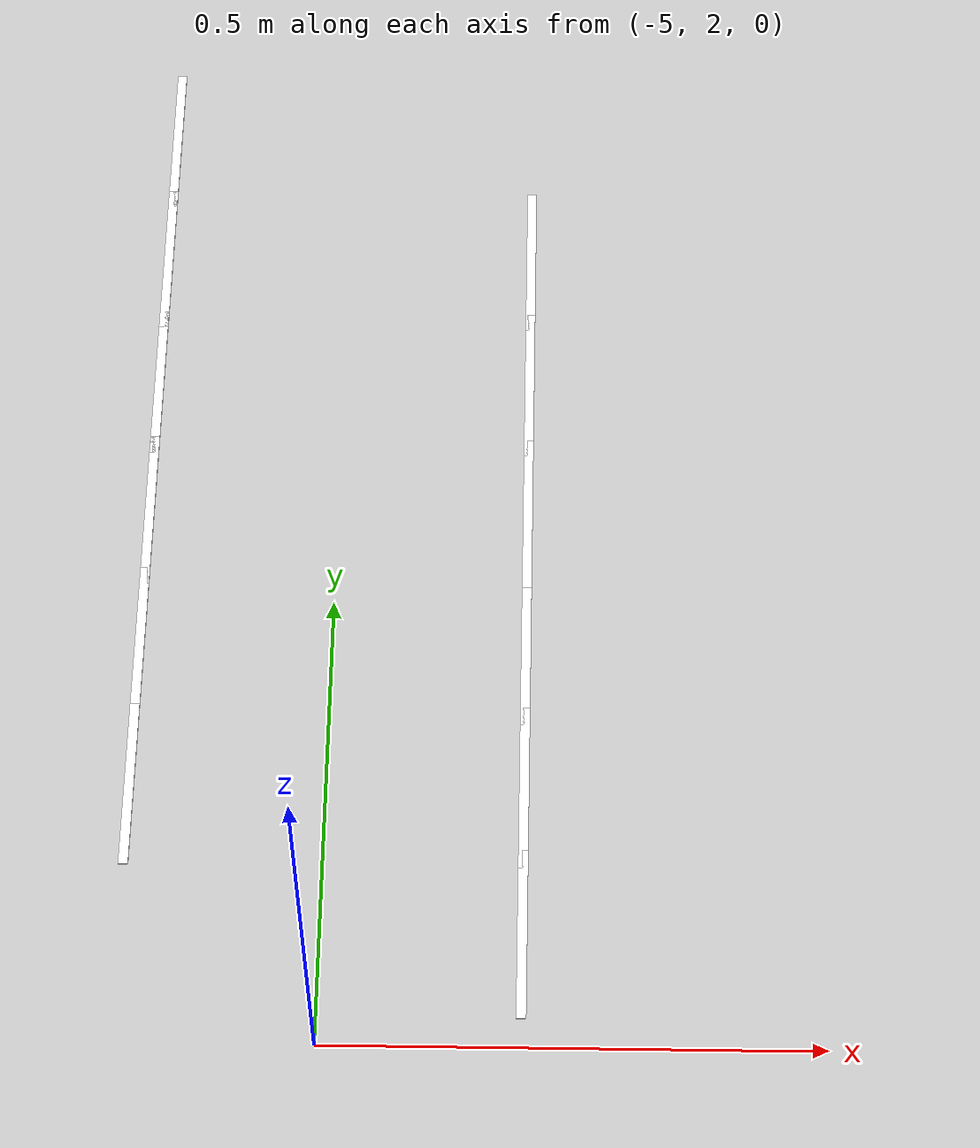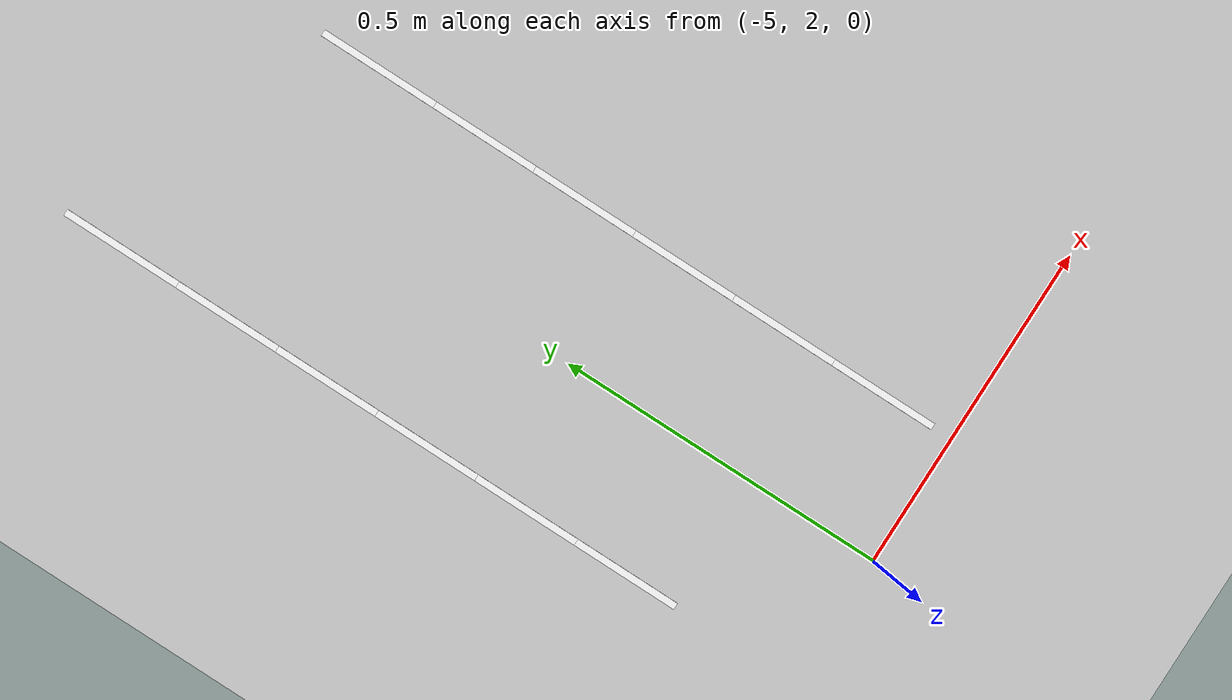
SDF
<sdf version="1.7">
 <world name="default">
  <model name="ground_plane">
   <static>1</static>
   <link name="link">
    <collision name="collision">
     <geometry><plane><normal>0 0 1</normal><size>100 100</size></plane></geometry>
     <surface>
      <contact><collide_bitmask>65535</collide_bitmask></contact>
      <friction><ode><mu>100</mu><mu2>50</mu2></ode></friction>
     </surface>
    </collision>
    <visual name="visual">
     <cast_shadows>0</cast_shadows>
     <geometry><plane><normal>0 0 1</normal><size>100 100</size></plane></geometry>
     <material>
      <script><uri>file://media/materials/scripts/gazebo.material</uri><name>Gazebo/Grey</name></script>
     </material>
    </visual>
   </link>
  </model>
  <model name="lane_line_right_305">
   <static>1</static>
   <link name="link">
    <pose>0 0 -0.004 0 -0 0</pose>
    <visual name="visual">
     <geometry><box><size>0.1833 0.01 0.01</size></box></geometry>
     <material><ambient>1 1 1 1</ambient><diffuse>1 1 1 1</diffuse></material>
    </visual>
    <collision name="collision"><geometry><box><size>0.1833 0.01 0.01</size></box></geometry></collision>
   </link>
   <pose>-5.2 3.10204 0 0 0 -1.5708</pose>
  </model>
  <model name="lane_line_left_306">
   <static>1</static>
   <link name="link">
    <pose>0 0 -0.004 0 -0 0</pose>
    <visual name="visual">
     <geometry><box><size>0.1833 0.01 0.01</size></box></geometry>
     <material><ambient>1 1 1 1</ambient><diffuse>1 1 1 1</diffuse></material>
    </visual>
    <collision name="collision"><geometry><box><size>0.1833 0.01 0.01</size></box></geometry></collision>
   </link>
   <pose>-4.8 2.93878 0 0 0 -1.5708</pose>
  </model>
  <model name="lane_line_right_306">
   <static>1</static>
   <link name="link">
    <pose>0 0 -0.004 0 -0 0</pose>
    <visual name="visual">
     <geometry><box><size>0.1833 0.01 0.01</size></box></geometry>
     <material><ambient>1 1 1 1</ambient><diffuse>1 1 1 1</diffuse></material>
    </visual>
    <collision name="collision"><geometry><box><size>0.1833 0.01 0.01</size></box></geometry></collision>
   </link>
   <pose>-5.2 2.93878 0 0 0 -1.5708</pose>
  </model>
  <model name="lane_line_left_307">
   <static>1</static>
   <link name="link">
    <pose>0 0 -0.004 0 -0 0</pose>
    <visual name="visual">
     <geometry><box><size>0.1833 0.01 0.01</size></box></geometry>
     <material><ambient>1 1 1 1</ambient><diffuse>1 1 1 1</diffuse></material>
    </visual>
    <collision name="collision"><geometry><box><size>0.1833 0.01 0.01</size></box></geometry></collision>
   </link>
   <pose>-4.8 2.77551 0 0 0 -1.5708</pose>
  </model>
  <model name="lane_line_right_307">
   <static>1</static>
   <link name="link">
    <pose>0 0 -0.004 0 -0 0</pose>
    <visual name="visual">
     <geometry><box><size>0.1833 0.01 0.01</size></box></geometry>
     <material><ambient>1 1 1 1</ambient><diffuse>1 1 1 1</diffuse></material>
    </visual>
    <collision name="collision"><geometry><box><size>0.1833 0.01 0.01</size></box></geometry></collision>
   </link>
   <pose>-5.2 2.77551 0 0 0 -1.5708</pose>
  </model>
  <model name="lane_line_left_308">
   <static>1</static>
   <link name="link">
    <pose>0 0 -0.004 0 -0 0</pose>
    <visual name="visual">
     <geometry><box><size>0.1833 0.01 0.01</size></box></geometry>
     <material><ambient>1 1 1 1</ambient><diffuse>1 1 1 1</diffuse></material>
    </visual>
    <collision name="collision"><geometry><box><size>0.1833 0.01 0.01</size></box></geometry></collision>
   </link>
   <pose>-4.8 2.61224 0 0 0 -1.5708</pose>
  </model>
  <model name="lane_line_right_308">
   <static>1</static>
   <link name="link">
    <pose>0 0 -0.004 0 -0 0</pose>
    <visual name="visual">
     <geometry><box><size>0.1833 0.01 0.01</size></box></geometry>
     <material><ambient>1 1 1 1</ambient><diffuse>1 1 1 1</diffuse></material>
    </visual>
    <collision name="collision"><geometry><box><size>0.1833 0.01 0.01</size></box></geometry></collision>
   </link>
   <pose>-5.2 2.61224 0 0 0 -1.5708</pose>
  </model>
  <model name="lane_line_left_309">
   <static>1</static>
   <link name="link">
    <pose>0 0 -0.004 0 -0 0</pose>
    <visual name="visual">
     <geometry><box><size>0.1833 0.01 0.01</size></box></geometry>
     <material><ambient>1 1 1 1</ambient><diffuse>1 1 1 1</diffuse></material>
    </visual>
    <collision name="collision"><geometry><box><size>0.1833 0.01 0.01</size></box></geometry></collision>
   </link>
   <pose>-4.8 2.44898 0 0 0 -1.5708</pose>
  </model>
  <model name="lane_line_right_309">
   <static>1</static>
   <link name="link">
    <pose>0 0 -0.004 0 -0 0</pose>
    <visual name="visual">
     <geometry><box><size>0.1833 0.01 0.01</size></box></geometry>
     <material><ambient>1 1 1 1</ambient><diffuse>1 1 1 1</diffuse></material>
    </visual>
    <collision name="collision"><geometry><box><size>0.1833 0.01 0.01</size></box></geometry></collision>
   </link>
   <pose>-5.2 2.44898 0 0 0 -1.5708</pose>
  </model>
  <model name="lane_line_left_310">
   <static>1</static>
   <link name="link">
    <pose>0 0 -0.004 0 -0 0</pose>
    <visual name="visual">
     <geometry><box><size>0.1833 0.01 0.01</size></box></geometry>
     <material><ambient>1 1 1 1</ambient><diffuse>1 1 1 1</diffuse></material>
    </visual>
    <collision name="collision"><geometry><box><size>0.1833 0.01 0.01</size></box></geometry></collision>
   </link>
   <pose>-4.8 2.28571 0 0 0 -1.5708</pose>
  </model>
  <model name="lane_line_right_310">
   <static>1</static>
   <link name="link">
    <pose>0 0 -0.004 0 -0 0</pose>
    <visual name="visual">
     <geometry><box><size>0.1833 0.01 0.01</size></box></geometry>
     <material><ambient>1 1 1 1</ambient><diffuse>1 1 1 1</diffuse></material>
    </visual>
    <collision name="collision"><geometry><box><size>0.1833 0.01 0.01</size></box></geometry></collision>
   </link>
   <pose>-5.2 2.28571 0 0 0 -1.5708</pose>
  </model>
  <model name="lane_line_left_311">
   <static>1</static>
   <link name="link">
    <pose>0 0 -0.004 0 -0 0</pose>
    <visual name="visual">
     <geometry><box><size>0.1833 0.01 0.01</size></box></geometry>
     <material><ambient>1 1 1 1</ambient><diffuse>1 1 1 1</diffuse></material>
    </visual>
    <collision name="collision"><geometry><box><size>0.1833 0.01 0.01</size></box></geometry></collision>
   </link>
   <pose>-4.8 2.12245 0 0 0 -1.5708</pose>
  </model>
 </world>
</sdf>
